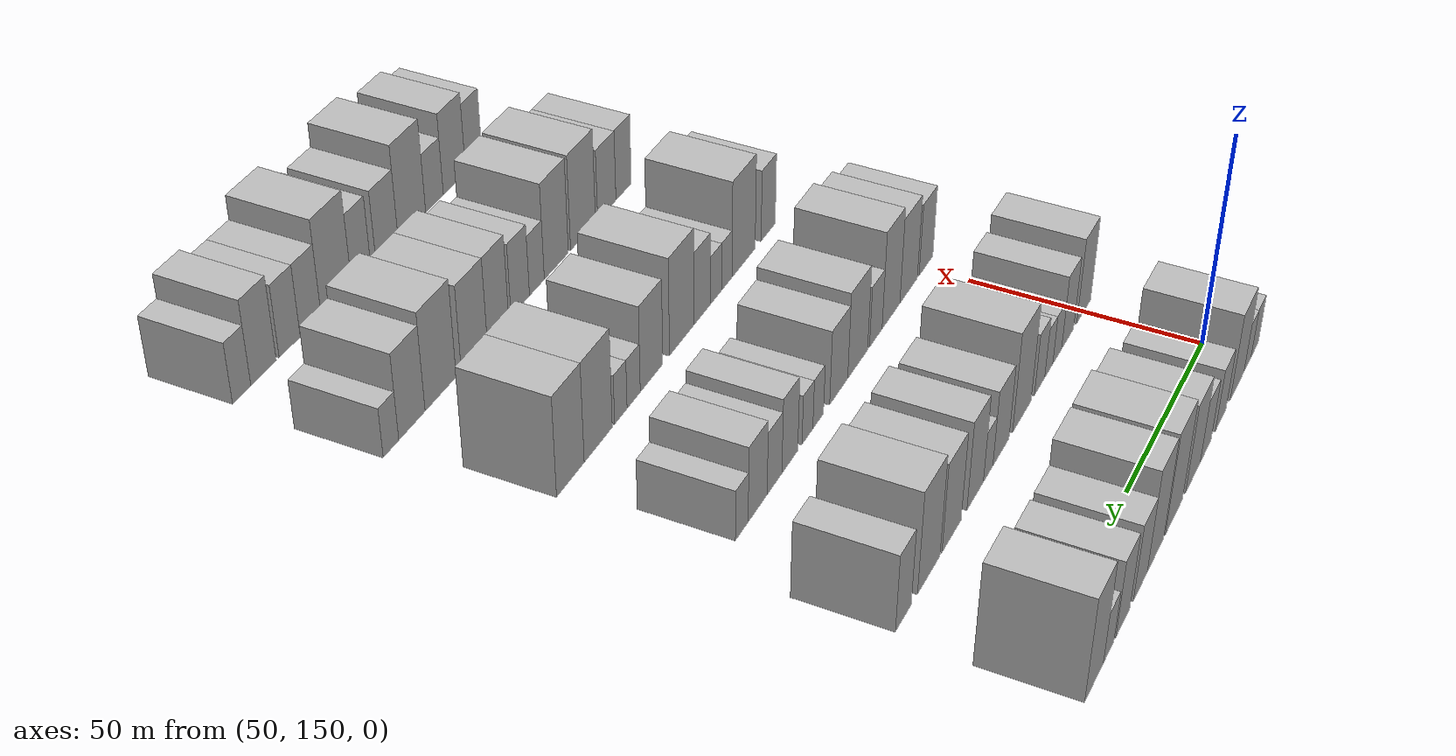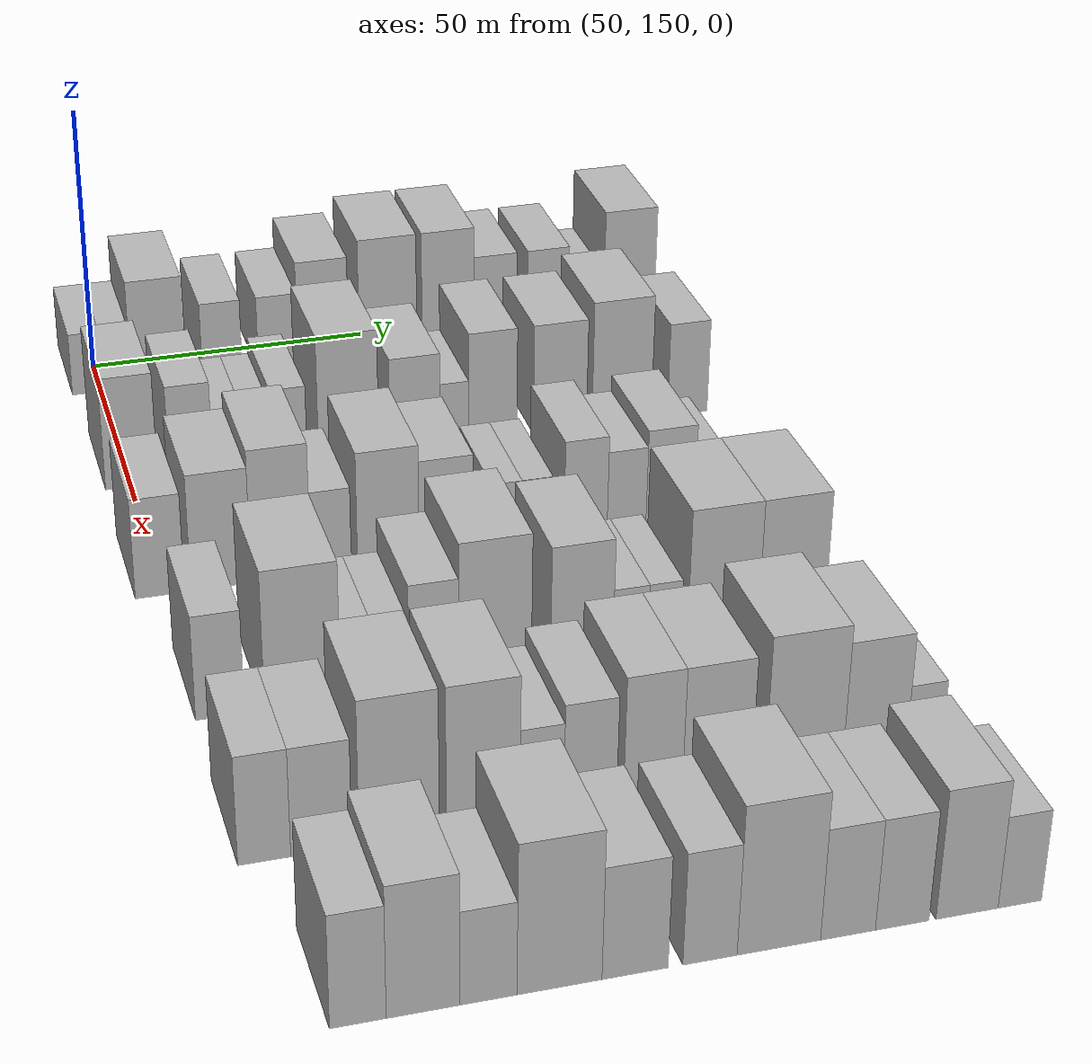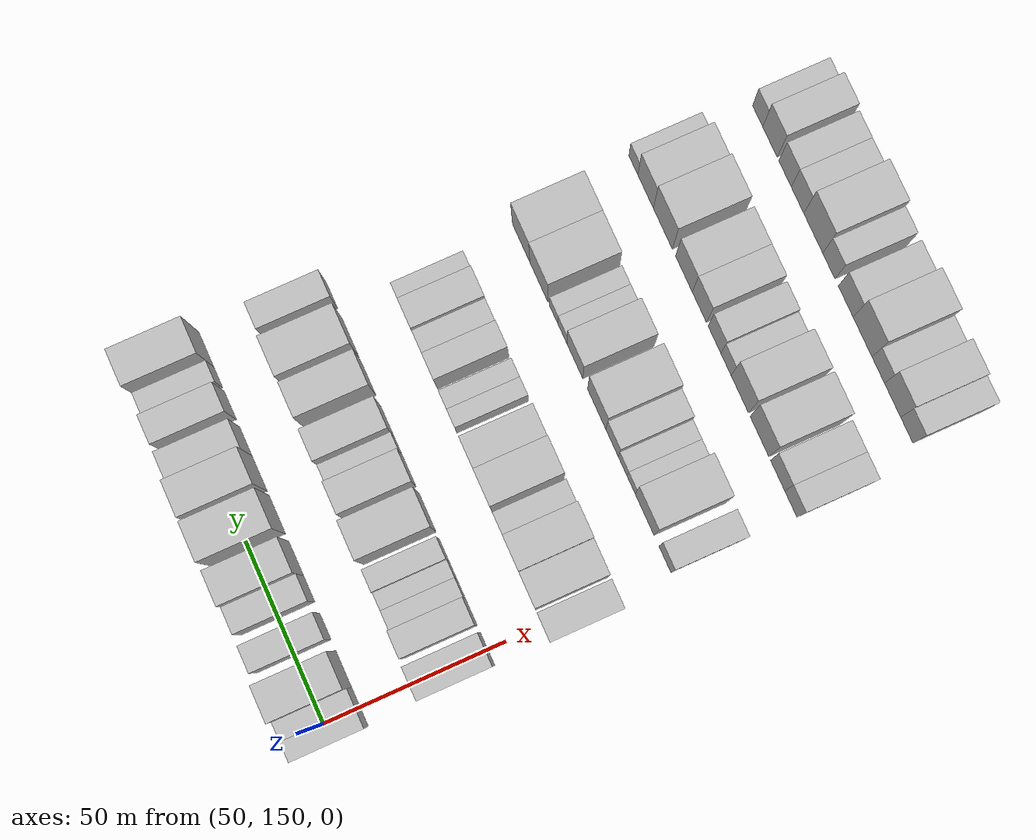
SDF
<sdf version="1.6">
 <world name="default">
  <model name="building_80">
   <static>1</static>
   <pose>50.0000 147.5443 0 0.000000 0.000000 0.000000</pose>
   <link name="link">
    <pose>0 0 6.00 0 0 0</pose>
    <collision name="collision"><geometry><box><size>20.0000 5.4869 12.0000</size></box></geometry></collision>
    <visual name="visual">
     <cast_shadows>0</cast_shadows>
     <geometry><box><size>20.0000 5.4869 12.0000</size></box></geometry>
     <material>
      <script>
       <uri>model://HANNAS_wall/materials/scripts</uri>
       <uri>model://HANNAS_wall/materials/textures</uri>
       <name>vrc/HANNAS_wall</name>
      </script>
     </material>
    </visual>
   </link>
  </model>
  <model name="building_81">
   <static>1</static>
   <pose>50.0000 152.8783 0 0.000000 0.000000 0.000000</pose>
   <link name="link">
    <pose>0 0 6.00 0 0 0</pose>
    <collision name="collision"><geometry><box><size>20.0000 5.1812 12.0000</size></box></geometry></collision>
    <visual name="visual">
     <cast_shadows>0</cast_shadows>
     <geometry><box><size>20.0000 5.1812 12.0000</size></box></geometry>
     <material>
      <script>
       <uri>model://HANNAS_wall/materials/scripts</uri>
       <uri>model://HANNAS_wall/materials/textures</uri>
       <name>vrc/HANNAS_wall</name>
      </script>
     </material>
    </visual>
   </link>
  </model>
  <model name="building_82">
   <static>1</static>
   <pose>50.0000 160.4415 0 0.000000 0.000000 0.000000</pose>
   <link name="link">
    <pose>0 0 10.50 0 0 0</pose>
    <collision name="collision"><geometry><box><size>20.0000 9.9450 21.0000</size></box></geometry></collision>
    <visual name="visual">
     <cast_shadows>0</cast_shadows>
     <geometry><box><size>20.0000 9.9450 21.0000</size></box></geometry>
     <material>
      <script>
       <uri>model://HANNAS_wall/materials/scripts</uri>
       <uri>model://HANNAS_wall/materials/textures</uri>
       <name>vrc/HANNAS_wall</name>
      </script>
     </material>
    </visual>
   </link>
  </model>
  <model name="building_83">
   <static>1</static>
   <pose>50.0000 172.0718 0 0.000000 0.000000 0.000000</pose>
   <link name="link">
    <pose>0 0 7.50 0 0 0</pose>
    <collision name="collision"><geometry><box><size>20.0000 7.3156 15.0000</size></box></geometry></collision>
    <visual name="visual">
     <cast_shadows>0</cast_shadows>
     <geometry><box><size>20.0000 7.3156 15.0000</size></box></geometry>
     <material>
      <script>
       <uri>model://HANNAS_wall/materials/scripts</uri>
       <uri>model://HANNAS_wall/materials/textures</uri>
       <name>vrc/HANNAS_wall</name>
      </script>
     </material>
    </visual>
   </link>
  </model>
  <model name="building_84">
   <static>1</static>
   <pose>50.0000 182.3911 0 0.000000 0.000000 0.000000</pose>
   <link name="link">
    <pose>0 0 7.50 0 0 0</pose>
    <collision name="collision"><geometry><box><size>20.0000 7.3231 15.0000</size></box></geometry></collision>
    <visual name="visual">
     <cast_shadows>0</cast_shadows>
     <geometry><box><size>20.0000 7.3231 15.0000</size></box></geometry>
     <material>
      <script>
       <uri>model://HANNAS_wall/materials/scripts</uri>
       <uri>model://HANNAS_wall/materials/textures</uri>
       <name>vrc/HANNAS_wall</name>
      </script>
     </material>
    </visual>
   </link>
  </model>
  <model name="building_85">
   <static>1</static>
   <pose>50.0000 190.8081 0 0.000000 0.000000 0.000000</pose>
   <link name="link">
    <pose>0 0 10.50 0 0 0</pose>
    <collision name="collision"><geometry><box><size>20.0000 9.5109 21.0000</size></box></geometry></collision>
    <visual name="visual">
     <cast_shadows>0</cast_shadows>
     <geometry><box><size>20.0000 9.5109 21.0000</size></box></geometry>
     <material>
      <script>
       <uri>model://HANNAS_wall/materials/scripts</uri>
       <uri>model://HANNAS_wall/materials/textures</uri>
       <name>vrc/HANNAS_wall</name>
      </script>
     </material>
    </visual>
   </link>
  </model>
  <model name="building_86">
   <static>1</static>
   <pose>50.0000 202.9898 0 0.000000 0.000000 0.000000</pose>
   <link name="link">
    <pose>0 0 12.00 0 0 0</pose>
    <collision name="collision"><geometry><box><size>20.0000 10.8527 24.0000</size></box></geometry></collision>
    <visual name="visual">
     <cast_shadows>0</cast_shadows>
     <geometry><box><size>20.0000 10.8527 24.0000</size></box></geometry>
     <material>
      <script>
       <uri>model://HANNAS_wall/materials/scripts</uri>
       <uri>model://HANNAS_wall/materials/textures</uri>
       <name>vrc/HANNAS_wall</name>
      </script>
     </material>
    </visual>
   </link>
  </model>
  <model name="building_87">
   <static>1</static>
   <pose>50.0000 214.3770 0 0.000000 0.000000 0.000000</pose>
   <link name="link">
    <pose>0 0 12.00 0 0 0</pose>
    <collision name="collision"><geometry><box><size>20.0000 9.9217 24.0000</size></box></geometry></collision>
    <visual name="visual">
     <cast_shadows>0</cast_shadows>
     <geometry><box><size>20.0000 9.9217 24.0000</size></box></geometry>
     <material>
      <script>
       <uri>model://HANNAS_wall/materials/scripts</uri>
       <uri>model://HANNAS_wall/materials/textures</uri>
       <name>vrc/HANNAS_wall</name>
      </script>
     </material>
    </visual>
   </link>
  </model>
  <model name="building_88">
   <static>1</static>
   <pose>50.0000 223.4311 0 0.000000 0.000000 0.000000</pose>
   <link name="link">
    <pose>0 0 9.00 0 0 0</pose>
    <collision name="collision"><geometry><box><size>20.0000 8.1863 18.0000</size></box></geometry></collision>
    <visual name="visual">
     <cast_shadows>0</cast_shadows>
     <geometry><box><size>20.0000 8.1863 18.0000</size></box></geometry>
     <material>
      <script>
       <uri>model://HANNAS_wall/materials/scripts</uri>
       <uri>model://HANNAS_wall/materials/textures</uri>
       <name>vrc/HANNAS_wall</name>
      </script>
     </material>
    </visual>
   </link>
  </model>
  <model name="building_89">
   <static>1</static>
   <pose>50.0000 233.5272 0 0.000000 0.000000 0.000000</pose>
   <link name="link">
    <pose>0 0 9.00 0 0 0</pose>
    <collision name="collision"><geometry><box><size>20.0000 8.0058 18.0000</size></box></geometry></collision>
    <visual name="visual">
     <cast_shadows>0</cast_shadows>
     <geometry><box><size>20.0000 8.0058 18.0000</size></box></geometry>
     <material>
      <script>
       <uri>model://HANNAS_wall/materials/scripts</uri>
       <uri>model://HANNAS_wall/materials/textures</uri>
       <name>vrc/HANNAS_wall</name>
      </script>
     </material>
    </visual>
   </link>
  </model>
  <model name="building_90">
   <static>1</static>
   <pose>50.0000 241.4566 0 0.000000 0.000000 0.000000</pose>
   <link name="link">
    <pose>0 0 6.00 0 0 0</pose>
    <collision name="collision"><geometry><box><size>20.0000 5.8530 12.0000</size></box></geometry></collision>
    <visual name="visual">
     <cast_shadows>0</cast_shadows>
     <geometry><box><size>20.0000 5.8530 12.0000</size></box></geometry>
     <material>
      <script>
       <uri>model://HANNAS_wall/materials/scripts</uri>
       <uri>model://HANNAS_wall/materials/textures</uri>
       <name>vrc/HANNAS_wall</name>
      </script>
     </material>
    </visual>
   </link>
  </model>
  <model name="building_91">
   <static>1</static>
   <pose>50.0000 249.3828 0 0.000000 0.000000 0.000000</pose>
   <link name="link">
    <pose>0 0 12.00 0 0 0</pose>
    <collision name="collision"><geometry><box><size>20.0000 9.9995 24.0000</size></box></geometry></collision>
    <visual name="visual">
     <cast_shadows>0</cast_shadows>
     <geometry><box><size>20.0000 9.9995 24.0000</size></box></geometry>
     <material>
      <script>
       <uri>model://HANNAS_wall/materials/scripts</uri>
       <uri>model://HANNAS_wall/materials/textures</uri>
       <name>vrc/HANNAS_wall</name>
      </script>
     </material>
    </visual>
   </link>
  </model>
  <model name="building_207">
   <static>1</static>
   <pose>85.0000 150.1189 0 0.000000 0.000000 0.000000</pose>
   <link name="link">
    <pose>0 0 10.50 0 0 0</pose>
    <collision name="collision"><geometry><box><size>20.0000 8.9159 21.0000</size></box></geometry></collision>
    <visual name="visual">
     <cast_shadows>0</cast_shadows>
     <geometry><box><size>20.0000 8.9159 21.0000</size></box></geometry>
     <material>
      <script>
       <uri>model://HANNAS_wall/materials/scripts</uri>
       <uri>model://HANNAS_wall/materials/textures</uri>
       <name>vrc/HANNAS_wall</name>
      </script>
     </material>
    </visual>
   </link>
  </model>
  <model name="building_208">
   <static>1</static>
   <pose>85.0000 160.3096 0 0.000000 0.000000 0.000000</pose>
   <link name="link">
    <pose>0 0 9.00 0 0 0</pose>
    <collision name="collision"><geometry><box><size>20.0000 7.4653 18.0000</size></box></geometry></collision>
    <visual name="visual">
     <cast_shadows>0</cast_shadows>
     <geometry><box><size>20.0000 7.4653 18.0000</size></box></geometry>
     <material>
      <script>
       <uri>model://HANNAS_wall/materials/scripts</uri>
       <uri>model://HANNAS_wall/materials/textures</uri>
       <name>vrc/HANNAS_wall</name>
      </script>
     </material>
    </visual>
   </link>
  </model>
  <model name="building_209">
   <static>1</static>
   <pose>85.0000 166.7355 0 0.000000 0.000000 0.000000</pose>
   <link name="link">
    <pose>0 0 6.00 0 0 0</pose>
    <collision name="collision"><geometry><box><size>20.0000 5.3866 12.0000</size></box></geometry></collision>
    <visual name="visual">
     <cast_shadows>0</cast_shadows>
     <geometry><box><size>20.0000 5.3866 12.0000</size></box></geometry>
     <material>
      <script>
       <uri>model://HANNAS_wall/materials/scripts</uri>
       <uri>model://HANNAS_wall/materials/textures</uri>
       <name>vrc/HANNAS_wall</name>
      </script>
     </material>
    </visual>
   </link>
  </model>
  <model name="building_210">
   <static>1</static>
   <pose>85.0000 171.8391 0 0.000000 0.000000 0.000000</pose>
   <link name="link">
    <pose>0 0 6.00 0 0 0</pose>
    <collision name="collision"><geometry><box><size>20.0000 4.8207 12.0000</size></box></geometry></collision>
    <visual name="visual">
     <cast_shadows>0</cast_shadows>
     <geometry><box><size>20.0000 4.8207 12.0000</size></box></geometry>
     <material>
      <script>
       <uri>model://HANNAS_wall/materials/scripts</uri>
       <uri>model://HANNAS_wall/materials/textures</uri>
       <name>vrc/HANNAS_wall</name>
      </script>
     </material>
    </visual>
   </link>
  </model>
  <model name="building_211">
   <static>1</static>
   <pose>85.0000 177.2936 0 0.000000 0.000000 0.000000</pose>
   <link name="link">
    <pose>0 0 7.50 0 0 0</pose>
    <collision name="collision"><geometry><box><size>20.0000 6.0883 15.0000</size></box></geometry></collision>
    <visual name="visual">
     <cast_shadows>0</cast_shadows>
     <geometry><box><size>20.0000 6.0883 15.0000</size></box></geometry>
     <material>
      <script>
       <uri>model://HANNAS_wall/materials/scripts</uri>
       <uri>model://HANNAS_wall/materials/textures</uri>
       <name>vrc/HANNAS_wall</name>
      </script>
     </material>
    </visual>
   </link>
  </model>
  <model name="building_212">
   <static>1</static>
   <pose>85.0000 187.6249 0 0.000000 0.000000 0.000000</pose>
   <link name="link">
    <pose>0 0 12.00 0 0 0</pose>
    <collision name="collision"><geometry><box><size>20.0000 10.5742 24.0000</size></box></geometry></collision>
    <visual name="visual">
     <cast_shadows>0</cast_shadows>
     <geometry><box><size>20.0000 10.5742 24.0000</size></box></geometry>
     <material>
      <script>
       <uri>model://HANNAS_wall/materials/scripts</uri>
       <uri>model://HANNAS_wall/materials/textures</uri>
       <name>vrc/HANNAS_wall</name>
      </script>
     </material>
    </visual>
   </link>
  </model>
  <model name="building_213">
   <static>1</static>
   <pose>85.0000 199.3542 0 0.000000 0.000000 0.000000</pose>
   <link name="link">
    <pose>0 0 9.00 0 0 0</pose>
    <collision name="collision"><geometry><box><size>20.0000 8.8843 18.0000</size></box></geometry></collision>
    <visual name="visual">
     <cast_shadows>0</cast_shadows>
     <geometry><box><size>20.0000 8.8843 18.0000</size></box></geometry>
     <material>
      <script>
       <uri>model://HANNAS_wall/materials/scripts</uri>
       <uri>model://HANNAS_wall/materials/textures</uri>
       <name>vrc/HANNAS_wall</name>
      </script>
     </material>
    </visual>
   </link>
  </model>
  <model name="building_214">
   <static>1</static>
   <pose>85.0000 206.3615 0 0.000000 0.000000 0.000000</pose>
   <link name="link">
    <pose>0 0 6.00 0 0 0</pose>
    <collision name="collision"><geometry><box><size>20.0000 5.1304 12.0000</size></box></geometry></collision>
    <visual name="visual">
     <cast_shadows>0</cast_shadows>
     <geometry><box><size>20.0000 5.1304 12.0000</size></box></geometry>
     <material>
      <script>
       <uri>model://HANNAS_wall/materials/scripts</uri>
       <uri>model://HANNAS_wall/materials/textures</uri>
       <name>vrc/HANNAS_wall</name>
      </script>
     </material>
    </visual>
   </link>
  </model>
  <model name="building_215">
   <static>1</static>
   <pose>85.0000 213.2600 0 0.000000 0.000000 0.000000</pose>
   <link name="link">
    <pose>0 0 10.50 0 0 0</pose>
    <collision name="collision"><geometry><box><size>20.0000 8.6665 21.0000</size></box></geometry></collision>
    <visual name="visual">
     <cast_shadows>0</cast_shadows>
     <geometry><box><size>20.0000 8.6665 21.0000</size></box></geometry>
     <material>
      <script>
       <uri>model://HANNAS_wall/materials/scripts</uri>
       <uri>model://HANNAS_wall/materials/textures</uri>
       <name>vrc/HANNAS_wall</name>
      </script>
     </material>
    </visual>
   </link>
  </model>
  <model name="building_216">
   <static>1</static>
   <pose>85.0000 225.4424 0 0.000000 0.000000 0.000000</pose>
   <link name="link">
    <pose>0 0 10.50 0 0 0</pose>
    <collision name="collision"><geometry><box><size>20.0000 9.6983 21.0000</size></box></geometry></collision>
    <visual name="visual">
     <cast_shadows>0</cast_shadows>
     <geometry><box><size>20.0000 9.6983 21.0000</size></box></geometry>
     <material>
      <script>
       <uri>model://HANNAS_wall/materials/scripts</uri>
       <uri>model://HANNAS_wall/materials/textures</uri>
       <name>vrc/HANNAS_wall</name>
      </script>
     </material>
    </visual>
   </link>
  </model>
  <model name="building_217">
   <static>1</static>
   <pose>85.0000 236.7686 0 0.000000 0.000000 0.000000</pose>
   <link name="link">
    <pose>0 0 12.00 0 0 0</pose>
    <collision name="collision"><geometry><box><size>20.0000 10.9541 24.0000</size></box></geometry></collision>
    <visual name="visual">
     <cast_shadows>0</cast_shadows>
     <geometry><box><size>20.0000 10.9541 24.0000</size></box></geometry>
     <material>
      <script>
       <uri>model://HANNAS_wall/materials/scripts</uri>
       <uri>model://HANNAS_wall/materials/textures</uri>
       <name>vrc/HANNAS_wall</name>
      </script>
     </material>
    </visual>
   </link>
  </model>
  <model name="building_218">
   <static>1</static>
   <pose>85.0000 248.9440 0 0.000000 0.000000 0.000000</pose>
   <link name="link">
    <pose>0 0 9.00 0 0 0</pose>
    <collision name="collision"><geometry><box><size>20.0000 7.3968 18.0000</size></box></geometry></collision>
    <visual name="visual">
     <cast_shadows>0</cast_shadows>
     <geometry><box><size>20.0000 7.3968 18.0000</size></box></geometry>
     <material>
      <script>
       <uri>model://HANNAS_wall/materials/scripts</uri>
       <uri>model://HANNAS_wall/materials/textures</uri>
       <name>vrc/HANNAS_wall</name>
      </script>
     </material>
    </visual>
   </link>
  </model>
  <model name="building_340">
   <static>1</static>
   <pose>120.0000 149.1892 0 0.000000 0.000000 0.000000</pose>
   <link name="link">
    <pose>0 0 9.00 0 0 0</pose>
    <collision name="collision"><geometry><box><size>20.0000 7.8641 18.0000</size></box></geometry></collision>
    <visual name="visual">
     <cast_shadows>0</cast_shadows>
     <geometry><box><size>20.0000 7.8641 18.0000</size></box></geometry>
     <material>
      <script>
       <uri>model://HANNAS_wall/materials/scripts</uri>
       <uri>model://HANNAS_wall/materials/textures</uri>
       <name>vrc/HANNAS_wall</name>
      </script>
     </material>
    </visual>
   </link>
  </model>
  <model name="building_341">
   <static>1</static>
   <pose>120.0000 158.9645 0 0.000000 0.000000 0.000000</pose>
   <link name="link">
    <pose>0 0 10.50 0 0 0</pose>
    <collision name="collision"><geometry><box><size>20.0000 9.6866 21.0000</size></box></geometry></collision>
    <visual name="visual">
     <cast_shadows>0</cast_shadows>
     <geometry><box><size>20.0000 9.6866 21.0000</size></box></geometry>
     <material>
      <script>
       <uri>model://HANNAS_wall/materials/scripts</uri>
       <uri>model://HANNAS_wall/materials/textures</uri>
       <name>vrc/HANNAS_wall</name>
      </script>
     </material>
    </visual>
   </link>
  </model>
  <model name="building_342">
   <static>1</static>
   <pose>120.0000 168.6385 0 0.000000 0.000000 0.000000</pose>
   <link name="link">
    <pose>0 0 12.00 0 0 0</pose>
    <collision name="collision"><geometry><box><size>20.0000 9.6614 24.0000</size></box></geometry></collision>
    <visual name="visual">
     <cast_shadows>0</cast_shadows>
     <geometry><box><size>20.0000 9.6614 24.0000</size></box></geometry>
     <material>
      <script>
       <uri>model://HANNAS_wall/materials/scripts</uri>
       <uri>model://HANNAS_wall/materials/textures</uri>
       <name>vrc/HANNAS_wall</name>
      </script>
     </material>
    </visual>
   </link>
  </model>
  <model name="building_343">
   <static>1</static>
   <pose>120.0000 176.7910 0 0.000000 0.000000 0.000000</pose>
   <link name="link">
    <pose>0 0 7.50 0 0 0</pose>
    <collision name="collision"><geometry><box><size>20.0000 6.6436 15.0000</size></box></geometry></collision>
    <visual name="visual">
     <cast_shadows>0</cast_shadows>
     <geometry><box><size>20.0000 6.6436 15.0000</size></box></geometry>
     <material>
      <script>
       <uri>model://HANNAS_wall/materials/scripts</uri>
       <uri>model://HANNAS_wall/materials/textures</uri>
       <name>vrc/HANNAS_wall</name>
      </script>
     </material>
    </visual>
   </link>
  </model>
  <model name="building_344">
   <static>1</static>
   <pose>120.0000 186.2108 0 0.000000 0.000000 0.000000</pose>
   <link name="link">
    <pose>0 0 10.50 0 0 0</pose>
    <collision name="collision"><geometry><box><size>20.0000 10.1960 21.0000</size></box></geometry></collision>
    <visual name="visual">
     <cast_shadows>0</cast_shadows>
     <geometry><box><size>20.0000 10.1960 21.0000</size></box></geometry>
     <material>
      <script>
       <uri>model://HANNAS_wall/materials/scripts</uri>
       <uri>model://HANNAS_wall/materials/textures</uri>
       <name>vrc/HANNAS_wall</name>
      </script>
     </material>
    </visual>
   </link>
  </model>
  <model name="building_345">
   <static>1</static>
   <pose>120.0000 195.8083 0 0.000000 0.000000 0.000000</pose>
   <link name="link">
    <pose>0 0 9.00 0 0 0</pose>
    <collision name="collision"><geometry><box><size>20.0000 8.9990 18.0000</size></box></geometry></collision>
    <visual name="visual">
     <cast_shadows>0</cast_shadows>
     <geometry><box><size>20.0000 8.9990 18.0000</size></box></geometry>
     <material>
      <script>
       <uri>model://HANNAS_wall/materials/scripts</uri>
       <uri>model://HANNAS_wall/materials/textures</uri>
       <name>vrc/HANNAS_wall</name>
      </script>
     </material>
    </visual>
   </link>
  </model>
  <model name="building_346">
   <static>1</static>
   <pose>120.0000 205.8857 0 0.000000 0.000000 0.000000</pose>
   <link name="link">
    <pose>0 0 6.00 0 0 0</pose>
    <collision name="collision"><geometry><box><size>20.0000 5.1559 12.0000</size></box></geometry></collision>
    <visual name="visual">
     <cast_shadows>0</cast_shadows>
     <geometry><box><size>20.0000 5.1559 12.0000</size></box></geometry>
     <material>
      <script>
       <uri>model://HANNAS_wall/materials/scripts</uri>
       <uri>model://HANNAS_wall/materials/textures</uri>
       <name>vrc/HANNAS_wall</name>
      </script>
     </material>
    </visual>
   </link>
  </model>
  <model name="building_347">
   <static>1</static>
   <pose>120.0000 211.0472 0 0.000000 0.000000 0.000000</pose>
   <link name="link">
    <pose>0 0 6.00 0 0 0</pose>
    <collision name="collision"><geometry><box><size>20.0000 5.1670 12.0000</size></box></geometry></collision>
    <visual name="visual">
     <cast_shadows>0</cast_shadows>
     <geometry><box><size>20.0000 5.1670 12.0000</size></box></geometry>
     <material>
      <script>
       <uri>model://HANNAS_wall/materials/scripts</uri>
       <uri>model://HANNAS_wall/materials/textures</uri>
       <name>vrc/HANNAS_wall</name>
      </script>
     </material>
    </visual>
   </link>
  </model>
  <model name="building_348">
   <static>1</static>
   <pose>120.0000 219.3156 0 0.000000 0.000000 0.000000</pose>
   <link name="link">
    <pose>0 0 9.00 0 0 0</pose>
    <collision name="collision"><geometry><box><size>20.0000 7.3699 18.0000</size></box></geometry></collision>
    <visual name="visual">
     <cast_shadows>0</cast_shadows>
     <geometry><box><size>20.0000 7.3699 18.0000</size></box></geometry>
     <material>
      <script>
       <uri>model://HANNAS_wall/materials/scripts</uri>
       <uri>model://HANNAS_wall/materials/textures</uri>
       <name>vrc/HANNAS_wall</name>
      </script>
     </material>
    </visual>
   </link>
  </model>
  <model name="building_349">
   <static>1</static>
   <pose>120.0000 226.3409 0 0.000000 0.000000 0.000000</pose>
   <link name="link">
    <pose>0 0 7.50 0 0 0</pose>
    <collision name="collision"><geometry><box><size>20.0000 6.6807 15.0000</size></box></geometry></collision>
    <visual name="visual">
     <cast_shadows>0</cast_shadows>
     <geometry><box><size>20.0000 6.6807 15.0000</size></box></geometry>
     <material>
      <script>
       <uri>model://HANNAS_wall/materials/scripts</uri>
       <uri>model://HANNAS_wall/materials/textures</uri>
       <name>vrc/HANNAS_wall</name>
      </script>
     </material>
    </visual>
   </link>
  </model>
  <model name="building_350">
   <static>1</static>
   <pose>120.0000 233.8640 0 0.000000 0.000000 0.000000</pose>
   <link name="link">
    <pose>0 0 9.00 0 0 0</pose>
    <collision name="collision"><geometry><box><size>20.0000 8.3655 18.0000</size></box></geometry></collision>
    <visual name="visual">
     <cast_shadows>0</cast_shadows>
     <geometry><box><size>20.0000 8.3655 18.0000</size></box></geometry>
     <material>
      <script>
       <uri>model://HANNAS_wall/materials/scripts</uri>
       <uri>model://HANNAS_wall/materials/textures</uri>
       <name>vrc/HANNAS_wall</name>
      </script>
     </material>
    </visual>
   </link>
  </model>
  <model name="building_351">
   <static>1</static>
   <pose>120.0000 240.7941 0 0.000000 0.000000 0.000000</pose>
   <link name="link">
    <pose>0 0 6.00 0 0 0</pose>
    <collision name="collision"><geometry><box><size>20.0000 5.4947 12.0000</size></box></geometry></collision>
    <visual name="visual">
     <cast_shadows>0</cast_shadows>
     <geometry><box><size>20.0000 5.4947 12.0000</size></box></geometry>
     <material>
      <script>
       <uri>model://HANNAS_wall/materials/scripts</uri>
       <uri>model://HANNAS_wall/materials/textures</uri>
       <name>vrc/HANNAS_wall</name>
      </script>
     </material>
    </visual>
   </link>
  </model>
  <model name="building_473">
   <static>1</static>
   <pose>155.0000 152.3677 0 0.000000 0.000000 0.000000</pose>
   <link name="link">
    <pose>0 0 9.00 0 0 0</pose>
    <collision name="collision"><geometry><box><size>20.0000 7.3181 18.0000</size></box></geometry></collision>
    <visual name="visual">
     <cast_shadows>0</cast_shadows>
     <geometry><box><size>20.0000 7.3181 18.0000</size></box></geometry>
     <material>
      <script>
       <uri>model://HANNAS_wall/materials/scripts</uri>
       <uri>model://HANNAS_wall/materials/textures</uri>
       <name>vrc/HANNAS_wall</name>
      </script>
     </material>
    </visual>
   </link>
  </model>
  <model name="building_474">
   <static>1</static>
   <pose>155.0000 164.7782 0 0.000000 0.000000 0.000000</pose>
   <link name="link">
    <pose>0 0 12.00 0 0 0</pose>
    <collision name="collision"><geometry><box><size>20.0000 11.5030 24.0000</size></box></geometry></collision>
    <visual name="visual">
     <cast_shadows>0</cast_shadows>
     <geometry><box><size>20.0000 11.5030 24.0000</size></box></geometry>
     <material>
      <script>
       <uri>model://HANNAS_wall/materials/scripts</uri>
       <uri>model://HANNAS_wall/materials/textures</uri>
       <name>vrc/HANNAS_wall</name>
      </script>
     </material>
    </visual>
   </link>
  </model>
  <model name="building_475">
   <static>1</static>
   <pose>155.0000 173.0403 0 0.000000 0.000000 0.000000</pose>
   <link name="link">
    <pose>0 0 6.00 0 0 0</pose>
    <collision name="collision"><geometry><box><size>20.0000 5.0211 12.0000</size></box></geometry></collision>
    <visual name="visual">
     <cast_shadows>0</cast_shadows>
     <geometry><box><size>20.0000 5.0211 12.0000</size></box></geometry>
     <material>
      <script>
       <uri>model://HANNAS_wall/materials/scripts</uri>
       <uri>model://HANNAS_wall/materials/textures</uri>
       <name>vrc/HANNAS_wall</name>
      </script>
     </material>
    </visual>
   </link>
  </model>
  <model name="building_476">
   <static>1</static>
   <pose>155.0000 178.2567 0 0.000000 0.000000 0.000000</pose>
   <link name="link">
    <pose>0 0 6.00 0 0 0</pose>
    <collision name="collision"><geometry><box><size>20.0000 5.4117 12.0000</size></box></geometry></collision>
    <visual name="visual">
     <cast_shadows>0</cast_shadows>
     <geometry><box><size>20.0000 5.4117 12.0000</size></box></geometry>
     <material>
      <script>
       <uri>model://HANNAS_wall/materials/scripts</uri>
       <uri>model://HANNAS_wall/materials/textures</uri>
       <name>vrc/HANNAS_wall</name>
      </script>
     </material>
    </visual>
   </link>
  </model>
  <model name="building_477">
   <static>1</static>
   <pose>155.0000 184.7906 0 0.000000 0.000000 0.000000</pose>
   <link name="link">
    <pose>0 0 9.00 0 0 0</pose>
    <collision name="collision"><geometry><box><size>20.0000 7.6559 18.0000</size></box></geometry></collision>
    <visual name="visual">
     <cast_shadows>0</cast_shadows>
     <geometry><box><size>20.0000 7.6559 18.0000</size></box></geometry>
     <material>
      <script>
       <uri>model://HANNAS_wall/materials/scripts</uri>
       <uri>model://HANNAS_wall/materials/textures</uri>
       <name>vrc/HANNAS_wall</name>
      </script>
     </material>
    </visual>
   </link>
  </model>
  <model name="building_478">
   <static>1</static>
   <pose>155.0000 194.2847 0 0.000000 0.000000 0.000000</pose>
   <link name="link">
    <pose>0 0 12.00 0 0 0</pose>
    <collision name="collision"><geometry><box><size>20.0000 11.3323 24.0000</size></box></geometry></collision>
    <visual name="visual">
     <cast_shadows>0</cast_shadows>
     <geometry><box><size>20.0000 11.3323 24.0000</size></box></geometry>
     <material>
      <script>
       <uri>model://HANNAS_wall/materials/scripts</uri>
       <uri>model://HANNAS_wall/materials/textures</uri>
       <name>vrc/HANNAS_wall</name>
      </script>
     </material>
    </visual>
   </link>
  </model>
  <model name="building_479">
   <static>1</static>
   <pose>155.0000 207.8891 0 0.000000 0.000000 0.000000</pose>
   <link name="link">
    <pose>0 0 10.50 0 0 0</pose>
    <collision name="collision"><geometry><box><size>20.0000 9.8766 21.0000</size></box></geometry></collision>
    <visual name="visual">
     <cast_shadows>0</cast_shadows>
     <geometry><box><size>20.0000 9.8766 21.0000</size></box></geometry>
     <material>
      <script>
       <uri>model://HANNAS_wall/materials/scripts</uri>
       <uri>model://HANNAS_wall/materials/textures</uri>
       <name>vrc/HANNAS_wall</name>
      </script>
     </material>
    </visual>
   </link>
  </model>
  <model name="building_480">
   <static>1</static>
   <pose>155.0000 215.6547 0 0.000000 0.000000 0.000000</pose>
   <link name="link">
    <pose>0 0 6.00 0 0 0</pose>
    <collision name="collision"><geometry><box><size>20.0000 5.6546 12.0000</size></box></geometry></collision>
    <visual name="visual">
     <cast_shadows>0</cast_shadows>
     <geometry><box><size>20.0000 5.6546 12.0000</size></box></geometry>
     <material>
      <script>
       <uri>model://HANNAS_wall/materials/scripts</uri>
       <uri>model://HANNAS_wall/materials/textures</uri>
       <name>vrc/HANNAS_wall</name>
      </script>
     </material>
    </visual>
   </link>
  </model>
  <model name="building_481">
   <static>1</static>
   <pose>155.0000 221.1014 0 0.000000 0.000000 0.000000</pose>
   <link name="link">
    <pose>0 0 6.00 0 0 0</pose>
    <collision name="collision"><geometry><box><size>20.0000 5.2386 12.0000</size></box></geometry></collision>
    <visual name="visual">
     <cast_shadows>0</cast_shadows>
     <geometry><box><size>20.0000 5.2386 12.0000</size></box></geometry>
     <material>
      <script>
       <uri>model://HANNAS_wall/materials/scripts</uri>
       <uri>model://HANNAS_wall/materials/textures</uri>
       <name>vrc/HANNAS_wall</name>
      </script>
     </material>
    </visual>
   </link>
  </model>
  <model name="building_482">
   <static>1</static>
   <pose>155.0000 230.4646 0 0.000000 0.000000 0.000000</pose>
   <link name="link">
    <pose>0 0 12.00 0 0 0</pose>
    <collision name="collision"><geometry><box><size>20.0000 11.4880 24.0000</size></box></geometry></collision>
    <visual name="visual">
     <cast_shadows>0</cast_shadows>
     <geometry><box><size>20.0000 11.4880 24.0000</size></box></geometry>
     <material>
      <script>
       <uri>model://HANNAS_wall/materials/scripts</uri>
       <uri>model://HANNAS_wall/materials/textures</uri>
       <name>vrc/HANNAS_wall</name>
      </script>
     </material>
    </visual>
   </link>
  </model>
  <model name="building_483">
   <static>1</static>
   <pose>155.0000 241.6723 0 0.000000 0.000000 0.000000</pose>
   <link name="link">
    <pose>0 0 12.00 0 0 0</pose>
    <collision name="collision"><geometry><box><size>20.0000 10.9274 24.0000</size></box></geometry></collision>
    <visual name="visual">
     <cast_shadows>0</cast_shadows>
     <geometry><box><size>20.0000 10.9274 24.0000</size></box></geometry>
     <material>
      <script>
       <uri>model://HANNAS_wall/materials/scripts</uri>
       <uri>model://HANNAS_wall/materials/textures</uri>
       <name>vrc/HANNAS_wall</name>
      </script>
     </material>
    </visual>
   </link>
  </model>
  <model name="building_588">
   <static>1</static>
   <pose>190.0000 152.0350 0 0.000000 0.000000 0.000000</pose>
   <link name="link">
    <pose>0 0 9.00 0 0 0</pose>
    <collision name="collision"><geometry><box><size>20.0000 7.3567 18.0000</size></box></geometry></collision>
    <visual name="visual">
     <cast_shadows>0</cast_shadows>
     <geometry><box><size>20.0000 7.3567 18.0000</size></box></geometry>
     <material>
      <script>
       <uri>model://HANNAS_wall/materials/scripts</uri>
       <uri>model://HANNAS_wall/materials/textures</uri>
       <name>vrc/HANNAS_wall</name>
      </script>
     </material>
    </visual>
   </link>
  </model>
  <model name="building_589">
   <static>1</static>
   <pose>190.0000 159.9889 0 0.000000 0.000000 0.000000</pose>
   <link name="link">
    <pose>0 0 9.00 0 0 0</pose>
    <collision name="collision"><geometry><box><size>20.0000 8.5512 18.0000</size></box></geometry></collision>
    <visual name="visual">
     <cast_shadows>0</cast_shadows>
     <geometry><box><size>20.0000 8.5512 18.0000</size></box></geometry>
     <material>
      <script>
       <uri>model://HANNAS_wall/materials/scripts</uri>
       <uri>model://HANNAS_wall/materials/textures</uri>
       <name>vrc/HANNAS_wall</name>
      </script>
     </material>
    </visual>
   </link>
  </model>
  <model name="building_590">
   <static>1</static>
   <pose>190.0000 170.9271 0 0.000000 0.000000 0.000000</pose>
   <link name="link">
    <pose>0 0 12.00 0 0 0</pose>
    <collision name="collision"><geometry><box><size>20.0000 11.3252 24.0000</size></box></geometry></collision>
    <visual name="visual">
     <cast_shadows>0</cast_shadows>
     <geometry><box><size>20.0000 11.3252 24.0000</size></box></geometry>
     <material>
      <script>
       <uri>model://HANNAS_wall/materials/scripts</uri>
       <uri>model://HANNAS_wall/materials/textures</uri>
       <name>vrc/HANNAS_wall</name>
      </script>
     </material>
    </visual>
   </link>
  </model>
  <model name="building_591">
   <static>1</static>
   <pose>190.0000 182.8670 0 0.000000 0.000000 0.000000</pose>
   <link name="link">
    <pose>0 0 12.00 0 0 0</pose>
    <collision name="collision"><geometry><box><size>20.0000 10.5547 24.0000</size></box></geometry></collision>
    <visual name="visual">
     <cast_shadows>0</cast_shadows>
     <geometry><box><size>20.0000 10.5547 24.0000</size></box></geometry>
     <material>
      <script>
       <uri>model://HANNAS_wall/materials/scripts</uri>
       <uri>model://HANNAS_wall/materials/textures</uri>
       <name>vrc/HANNAS_wall</name>
      </script>
     </material>
    </visual>
   </link>
  </model>
  <model name="building_592">
   <static>1</static>
   <pose>190.0000 191.3172 0 0.000000 0.000000 0.000000</pose>
   <link name="link">
    <pose>0 0 7.50 0 0 0</pose>
    <collision name="collision"><geometry><box><size>20.0000 6.3457 15.0000</size></box></geometry></collision>
    <visual name="visual">
     <cast_shadows>0</cast_shadows>
     <geometry><box><size>20.0000 6.3457 15.0000</size></box></geometry>
     <material>
      <script>
       <uri>model://HANNAS_wall/materials/scripts</uri>
       <uri>model://HANNAS_wall/materials/textures</uri>
       <name>vrc/HANNAS_wall</name>
      </script>
     </material>
    </visual>
   </link>
  </model>
  <model name="building_593">
   <static>1</static>
   <pose>190.0000 198.3659 0 0.000000 0.000000 0.000000</pose>
   <link name="link">
    <pose>0 0 9.00 0 0 0</pose>
    <collision name="collision"><geometry><box><size>20.0000 7.7517 18.0000</size></box></geometry></collision>
    <visual name="visual">
     <cast_shadows>0</cast_shadows>
     <geometry><box><size>20.0000 7.7517 18.0000</size></box></geometry>
     <material>
      <script>
       <uri>model://HANNAS_wall/materials/scripts</uri>
       <uri>model://HANNAS_wall/materials/textures</uri>
       <name>vrc/HANNAS_wall</name>
      </script>
     </material>
    </visual>
   </link>
  </model>
  <model name="building_594">
   <static>1</static>
   <pose>190.0000 207.5962 0 0.000000 0.000000 0.000000</pose>
   <link name="link">
    <pose>0 0 10.50 0 0 0</pose>
    <collision name="collision"><geometry><box><size>20.0000 8.7090 21.0000</size></box></geometry></collision>
    <visual name="visual">
     <cast_shadows>0</cast_shadows>
     <geometry><box><size>20.0000 8.7090 21.0000</size></box></geometry>
     <material>
      <script>
       <uri>model://HANNAS_wall/materials/scripts</uri>
       <uri>model://HANNAS_wall/materials/textures</uri>
       <name>vrc/HANNAS_wall</name>
      </script>
     </material>
    </visual>
   </link>
  </model>
  <model name="building_595">
   <static>1</static>
   <pose>190.0000 217.1132 0 0.000000 0.000000 0.000000</pose>
   <link name="link">
    <pose>0 0 10.50 0 0 0</pose>
    <collision name="collision"><geometry><box><size>20.0000 10.3251 21.0000</size></box></geometry></collision>
    <visual name="visual">
     <cast_shadows>0</cast_shadows>
     <geometry><box><size>20.0000 10.3251 21.0000</size></box></geometry>
     <material>
      <script>
       <uri>model://HANNAS_wall/materials/scripts</uri>
       <uri>model://HANNAS_wall/materials/textures</uri>
       <name>vrc/HANNAS_wall</name>
      </script>
     </material>
    </visual>
   </link>
  </model>
  <model name="building_596">
   <static>1</static>
   <pose>190.0000 230.1955 0 0.000000 0.000000 0.000000</pose>
   <link name="link">
    <pose>0 0 12.00 0 0 0</pose>
    <collision name="collision"><geometry><box><size>20.0000 11.8394 24.0000</size></box></geometry></collision>
    <visual name="visual">
     <cast_shadows>0</cast_shadows>
     <geometry><box><size>20.0000 11.8394 24.0000</size></box></geometry>
     <material>
      <script>
       <uri>model://HANNAS_wall/materials/scripts</uri>
       <uri>model://HANNAS_wall/materials/textures</uri>
       <name>vrc/HANNAS_wall</name>
      </script>
     </material>
    </visual>
   </link>
  </model>
  <model name="building_597">
   <static>1</static>
   <pose>190.0000 240.9728 0 0.000000 0.000000 0.000000</pose>
   <link name="link">
    <pose>0 0 10.50 0 0 0</pose>
    <collision name="collision"><geometry><box><size>20.0000 9.7153 21.0000</size></box></geometry></collision>
    <visual name="visual">
     <cast_shadows>0</cast_shadows>
     <geometry><box><size>20.0000 9.7153 21.0000</size></box></geometry>
     <material>
      <script>
       <uri>model://HANNAS_wall/materials/scripts</uri>
       <uri>model://HANNAS_wall/materials/textures</uri>
       <name>vrc/HANNAS_wall</name>
      </script>
     </material>
    </visual>
   </link>
  </model>
  <model name="building_598">
   <static>1</static>
   <pose>190.0000 248.6348 0 0.000000 0.000000 0.000000</pose>
   <link name="link">
    <pose>0 0 6.00 0 0 0</pose>
    <collision name="collision"><geometry><box><size>20.0000 5.6086 12.0000</size></box></geometry></collision>
    <visual name="visual">
     <cast_shadows>0</cast_shadows>
     <geometry><box><size>20.0000 5.6086 12.0000</size></box></geometry>
     <material>
      <script>
       <uri>model://HANNAS_wall/materials/scripts</uri>
       <uri>model://HANNAS_wall/materials/textures</uri>
       <name>vrc/HANNAS_wall</name>
      </script>
     </material>
    </visual>
   </link>
  </model>
  <model name="building_713">
   <static>1</static>
   <pose>225.0000 157.0380 0 0.000000 0.000000 0.000000</pose>
   <link name="link">
    <pose>0 0 9.00 0 0 0</pose>
    <collision name="collision"><geometry><box><size>20.0000 7.3046 18.0000</size></box></geometry></collision>
    <visual name="visual">
     <cast_shadows>0</cast_shadows>
     <geometry><box><size>20.0000 7.3046 18.0000</size></box></geometry>
     <material>
      <script>
       <uri>model://HANNAS_wall/materials/scripts</uri>
       <uri>model://HANNAS_wall/materials/textures</uri>
       <name>vrc/HANNAS_wall</name>
      </script>
     </material>
    </visual>
   </link>
  </model>
  <model name="building_714">
   <static>1</static>
   <pose>225.0000 165.4955 0 0.000000 0.000000 0.000000</pose>
   <link name="link">
    <pose>0 0 10.50 0 0 0</pose>
    <collision name="collision"><geometry><box><size>20.0000 9.6103 21.0000</size></box></geometry></collision>
    <visual name="visual">
     <cast_shadows>0</cast_shadows>
     <geometry><box><size>20.0000 9.6103 21.0000</size></box></geometry>
     <material>
      <script>
       <uri>model://HANNAS_wall/materials/scripts</uri>
       <uri>model://HANNAS_wall/materials/textures</uri>
       <name>vrc/HANNAS_wall</name>
      </script>
     </material>
    </visual>
   </link>
  </model>
  <model name="building_715">
   <static>1</static>
   <pose>225.0000 174.0371 0 0.000000 0.000000 0.000000</pose>
   <link name="link">
    <pose>0 0 7.50 0 0 0</pose>
    <collision name="collision"><geometry><box><size>20.0000 7.4729 15.0000</size></box></geometry></collision>
    <visual name="visual">
     <cast_shadows>0</cast_shadows>
     <geometry><box><size>20.0000 7.4729 15.0000</size></box></geometry>
     <material>
      <script>
       <uri>model://HANNAS_wall/materials/scripts</uri>
       <uri>model://HANNAS_wall/materials/textures</uri>
       <name>vrc/HANNAS_wall</name>
      </script>
     </material>
    </visual>
   </link>
  </model>
  <model name="building_716">
   <static>1</static>
   <pose>225.0000 183.4355 0 0.000000 0.000000 0.000000</pose>
   <link name="link">
    <pose>0 0 12.00 0 0 0</pose>
    <collision name="collision"><geometry><box><size>20.0000 11.3239 24.0000</size></box></geometry></collision>
    <visual name="visual">
     <cast_shadows>0</cast_shadows>
     <geometry><box><size>20.0000 11.3239 24.0000</size></box></geometry>
     <material>
      <script>
       <uri>model://HANNAS_wall/materials/scripts</uri>
       <uri>model://HANNAS_wall/materials/textures</uri>
       <name>vrc/HANNAS_wall</name>
      </script>
     </material>
    </visual>
   </link>
  </model>
  <model name="building_717">
   <static>1</static>
   <pose>225.0000 193.5552 0 0.000000 0.000000 0.000000</pose>
   <link name="link">
    <pose>0 0 9.00 0 0 0</pose>
    <collision name="collision"><geometry><box><size>20.0000 8.9156 18.0000</size></box></geometry></collision>
    <visual name="visual">
     <cast_shadows>0</cast_shadows>
     <geometry><box><size>20.0000 8.9156 18.0000</size></box></geometry>
     <material>
      <script>
       <uri>model://HANNAS_wall/materials/scripts</uri>
       <uri>model://HANNAS_wall/materials/textures</uri>
       <name>vrc/HANNAS_wall</name>
      </script>
     </material>
    </visual>
   </link>
  </model>
  <model name="building_718">
   <static>1</static>
   <pose>225.0000 203.7234 0 0.000000 0.000000 0.000000</pose>
   <link name="link">
    <pose>0 0 9.00 0 0 0</pose>
    <collision name="collision"><geometry><box><size>20.0000 7.4208 18.0000</size></box></geometry></collision>
    <visual name="visual">
     <cast_shadows>0</cast_shadows>
     <geometry><box><size>20.0000 7.4208 18.0000</size></box></geometry>
     <material>
      <script>
       <uri>model://HANNAS_wall/materials/scripts</uri>
       <uri>model://HANNAS_wall/materials/textures</uri>
       <name>vrc/HANNAS_wall</name>
      </script>
     </material>
    </visual>
   </link>
  </model>
  <model name="building_719">
   <static>1</static>
   <pose>225.0000 213.2122 0 0.000000 0.000000 0.000000</pose>
   <link name="link">
    <pose>0 0 12.00 0 0 0</pose>
    <collision name="collision"><geometry><box><size>20.0000 11.5567 24.0000</size></box></geometry></collision>
    <visual name="visual">
     <cast_shadows>0</cast_shadows>
     <geometry><box><size>20.0000 11.5567 24.0000</size></box></geometry>
     <material>
      <script>
       <uri>model://HANNAS_wall/materials/scripts</uri>
       <uri>model://HANNAS_wall/materials/textures</uri>
       <name>vrc/HANNAS_wall</name>
      </script>
     </material>
    </visual>
   </link>
  </model>
  <model name="building_720">
   <static>1</static>
   <pose>225.0000 222.8370 0 0.000000 0.000000 0.000000</pose>
   <link name="link">
    <pose>0 0 9.00 0 0 0</pose>
    <collision name="collision"><geometry><box><size>20.0000 7.6929 18.0000</size></box></geometry></collision>
    <visual name="visual">
     <cast_shadows>0</cast_shadows>
     <geometry><box><size>20.0000 7.6929 18.0000</size></box></geometry>
     <material>
      <script>
       <uri>model://HANNAS_wall/materials/scripts</uri>
       <uri>model://HANNAS_wall/materials/textures</uri>
       <name>vrc/HANNAS_wall</name>
      </script>
     </material>
    </visual>
   </link>
  </model>
  <model name="building_721">
   <static>1</static>
   <pose>225.0000 230.4710 0 0.000000 0.000000 0.000000</pose>
   <link name="link">
    <pose>0 0 9.00 0 0 0</pose>
    <collision name="collision"><geometry><box><size>20.0000 7.5751 18.0000</size></box></geometry></collision>
    <visual name="visual">
     <cast_shadows>0</cast_shadows>
     <geometry><box><size>20.0000 7.5751 18.0000</size></box></geometry>
     <material>
      <script>
       <uri>model://HANNAS_wall/materials/scripts</uri>
       <uri>model://HANNAS_wall/materials/textures</uri>
       <name>vrc/HANNAS_wall</name>
      </script>
     </material>
    </visual>
   </link>
  </model>
  <model name="building_722">
   <static>1</static>
   <pose>225.0000 239.7042 0 0.000000 0.000000 0.000000</pose>
   <link name="link">
    <pose>0 0 10.50 0 0 0</pose>
    <collision name="collision"><geometry><box><size>20.0000 8.8913 21.0000</size></box></geometry></collision>
    <visual name="visual">
     <cast_shadows>0</cast_shadows>
     <geometry><box><size>20.0000 8.8913 21.0000</size></box></geometry>
     <material>
      <script>
       <uri>model://HANNAS_wall/materials/scripts</uri>
       <uri>model://HANNAS_wall/materials/textures</uri>
       <name>vrc/HANNAS_wall</name>
      </script>
     </material>
    </visual>
   </link>
  </model>
  <model name="building_723">
   <static>1</static>
   <pose>225.0000 247.2819 0 0.000000 0.000000 0.000000</pose>
   <link name="link">
    <pose>0 0 7.50 0 0 0</pose>
    <collision name="collision"><geometry><box><size>20.0000 6.2641 15.0000</size></box></geometry></collision>
    <visual name="visual">
     <cast_shadows>0</cast_shadows>
     <geometry><box><size>20.0000 6.2641 15.0000</size></box></geometry>
     <material>
      <script>
       <uri>model://HANNAS_wall/materials/scripts</uri>
       <uri>model://HANNAS_wall/materials/textures</uri>
       <name>vrc/HANNAS_wall</name>
      </script>
     </material>
    </visual>
   </link>
  </model>
 </world>
</sdf>
